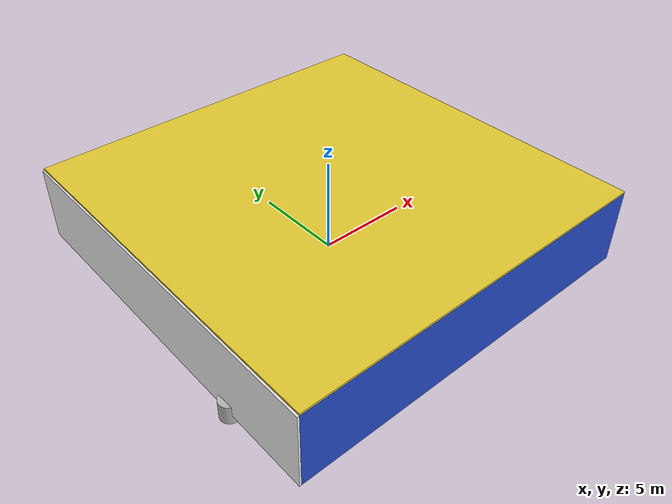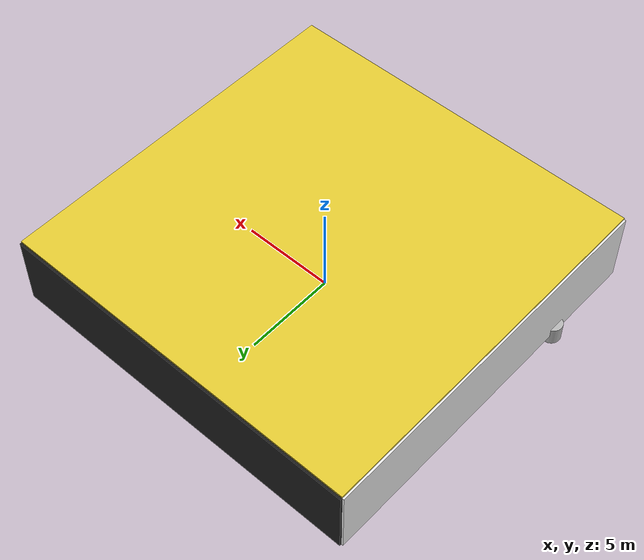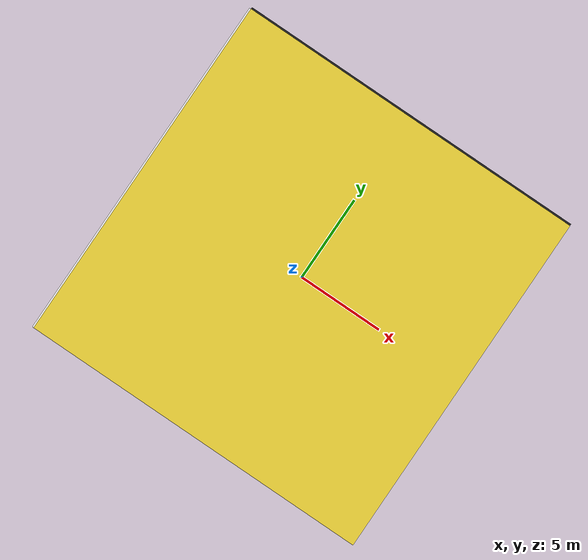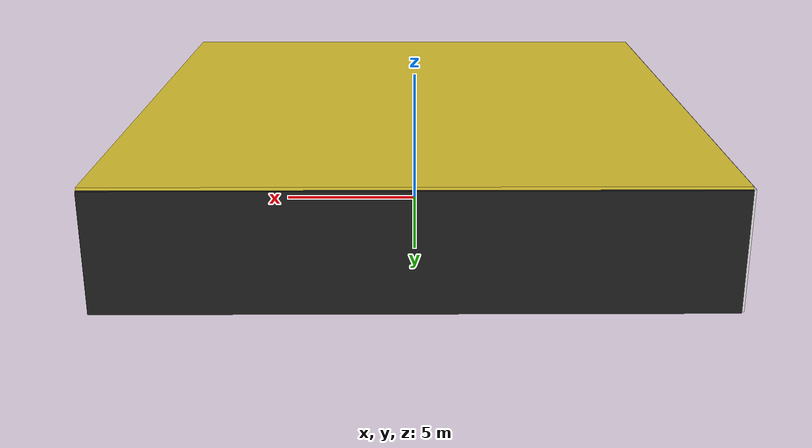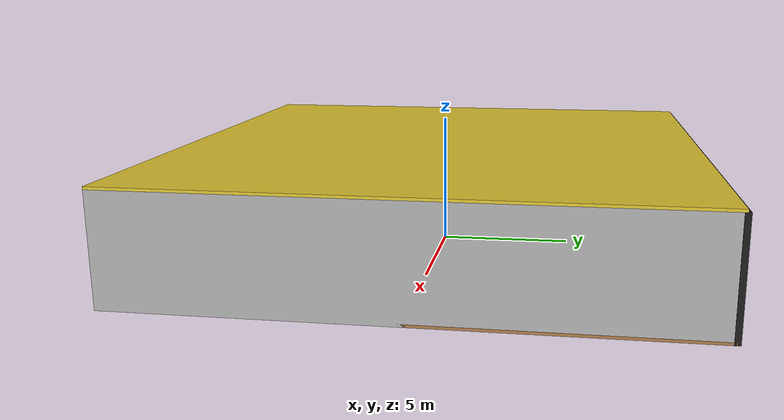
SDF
<sdf version="1.4">
 <world name="default">
  <physics type="ode">
   <max_step_size>0.001</max_step_size>
   <real_time_factor>1</real_time_factor>
   <real_time_update_rate>1000</real_time_update_rate>
   <gravity>0 0 -9.8</gravity>
  </physics>
  <scene><ambient>0.4 0.4 0.4 1</ambient><background>0.7 0.7 0.7 1</background><shadows>1</shadows></scene>
  <model name="Surrounding">
   <static>1</static>
   <link name="Ceiling">
    <collision name="Ceiling_Collision"><geometry><box><size>20 20 0.1</size></box></geometry></collision>
    <visual name="Ceiling_Visual">
     <geometry><box><size>20 20 0.1</size></box></geometry>
     <material>
      <script><uri>file://media/materials/scripts/gazebo.material</uri><name>Gazebo/ZincYellow</name></script>
     </material>
    </visual>
    <pose>0 0 4.05 0 0 0</pose>
   </link>
   <link name="Wall_South">
    <collision name="Wall_South_Collision">
     <geometry><box><size>20 0 4</size></box></geometry>
     <pose>0 0 2 0 -0 0</pose>
    </collision>
    <visual name="Wall_South_Visual">
     <pose>0 0 2 0 -0 0</pose>
     <geometry><box><size>20 0 4</size></box></geometry>
     <material>
      <script><uri>file://media/materials/scripts/gazebo.material</uri><name>Gazebo/Blue</name></script>
     </material>
    </visual>
    <velocity_decay><linear>0</linear><angular>0</angular></velocity_decay>
    <pose>0 -10 0 0 -0 0</pose>
   </link>
   <link name="Wall_East">
    <collision name="Wall_21_Collision">
     <geometry><box><size>20 0 4</size></box></geometry>
     <pose>0 0 2 0 -0 0</pose>
    </collision>
    <visual name="Wall_21_Visual">
     <pose>0 0 2 0 -0 0</pose>
     <geometry><box><size>20 0 4</size></box></geometry>
     <material>
      <script><uri>file://media/materials/scripts/gazebo.material</uri><name>Gazebo/CloudySky</name></script>
     </material>
    </visual>
    <velocity_decay><linear>0</linear><angular>0</angular></velocity_decay>
    <pose>10 0 0 0 -0 1.5708</pose>
   </link>
   <link name="Wall_North">
    <collision name="Wall_22_Collision">
     <geometry><box><size>20 0.2 4</size></box></geometry>
     <pose>0 0 2 0 -0 0</pose>
    </collision>
    <visual name="Wall_22_Visual">
     <pose>0 0 2 0 -0 0</pose>
     <geometry><box><size>20 0.2 4</size></box></geometry>
     <material>
      <script><uri>file://media/materials/scripts/gazebo.material</uri><name>Gazebo/FlatBlack</name></script>
     </material>
    </visual>
    <velocity_decay><linear>0</linear><angular>0</angular></velocity_decay>
    <pose>0 10 0 0 -0 0</pose>
   </link>
   <link name="Wall_West">
    <collision name="Wall_23_Collision">
     <geometry><box><size>20 0.2 4</size></box></geometry>
     <pose>0 0 2 0 -0 0</pose>
    </collision>
    <visual name="Wall_23_Visual">
     <pose>0 0 2 0 -0 0</pose>
     <geometry><box><size>20 0.2 4</size></box></geometry>
     <material>
      <script><uri>file://media/materials/scripts/gazebo.material</uri><name>Gazebo/White</name></script>
     </material>
    </visual>
    <velocity_decay><linear>0</linear><angular>0</angular></velocity_decay>
    <pose>-10 0 0 0 0 -1.5708</pose>
   </link>
   <link name="Ground_link">
    <collision name="collision">
     <pose>0 0 .05 0 -0 0</pose>
     <geometry><box><size>20 20 0.1</size></box></geometry>
    </collision>
    <visual name="visual">
     <pose>0 0 .05 0 -0 0</pose>
     <geometry><box><size>20 20 0.1</size></box></geometry>
     <material>
      <script><uri>file://media/materials/scripts/gazebo.material</uri><name>Gazebo/WoodPallet</name></script>
     </material>
    </visual>
   </link>
   <static>1</static>
  </model>
  <spherical_coordinates>
   <surface_model>EARTH_WGS84</surface_model>
   <latitude_deg>0</latitude_deg>
   <longitude_deg>0</longitude_deg>
   <elevation>0</elevation>
   <heading_deg>0</heading_deg>
  </spherical_coordinates>
  <light name="lightball_0" type="diffuse">
   <diffuse>0.8 0.8 0.8 1</diffuse>
   <specular>0.2 0.2 0.2 1</specular>
   <attenuation>
    <range>100</range>
    <constant>0.7</constant>
    <linear>0.01</linear>
    <quadratic>0.001</quadratic>
   </attenuation>
   <direction>-0.5 0.1 -0.9</direction>
   <pose>-0.103257895045 9.40067847142 3.2526845501 0 0 0</pose>
  </light>
  <light name="lightball_1" type="diffuse">
   <diffuse>0.8 0.8 0.8 1</diffuse>
   <specular>0.2 0.2 0.2 1</specular>
   <attenuation>
    <range>100</range>
    <constant>0.7</constant>
    <linear>0.01</linear>
    <quadratic>0.001</quadratic>
   </attenuation>
   <direction>-0.5 0.1 -0.9</direction>
   <pose>-5.09414641733 1.21996396358 3.14297688827 0 0 0</pose>
  </light>
  <light name="lightball_2" type="diffuse">
   <diffuse>0.8 0.8 0.8 1</diffuse>
   <specular>0.2 0.2 0.2 1</specular>
   <attenuation>
    <range>100</range>
    <constant>0.7</constant>
    <linear>0.01</linear>
    <quadratic>0.001</quadratic>
   </attenuation>
   <direction>-0.5 0.1 -0.9</direction>
   <pose>9.91248009124 9.0711772436 1.36961092723 0 0 0</pose>
  </light>
  <light name="lightball_3" type="diffuse">
   <diffuse>0.8 0.8 0.8 1</diffuse>
   <specular>0.2 0.2 0.2 1</specular>
   <attenuation>
    <range>100</range>
    <constant>0.7</constant>
    <linear>0.01</linear>
    <quadratic>0.001</quadratic>
   </attenuation>
   <direction>-0.5 0.1 -0.9</direction>
   <pose>-4.11134986466 3.5513981027 1.16891625148 0 0 0</pose>
  </light>
  <light name="lightball_4" type="diffuse">
   <diffuse>0.8 0.8 0.8 1</diffuse>
   <specular>0.2 0.2 0.2 1</specular>
   <attenuation>
    <range>100</range>
    <constant>0.7</constant>
    <linear>0.01</linear>
    <quadratic>0.001</quadratic>
   </attenuation>
   <direction>-0.5 0.1 -0.9</direction>
   <pose>4.81450222377 -6.82722284309 3.40185586623 0 0 0</pose>
  </light>
  <light name="lightball_5" type="diffuse">
   <diffuse>0.8 0.8 0.8 1</diffuse>
   <specular>0.2 0.2 0.2 1</specular>
   <attenuation>
    <range>100</range>
    <constant>0.7</constant>
    <linear>0.01</linear>
    <quadratic>0.001</quadratic>
   </attenuation>
   <direction>-0.5 0.1 -0.9</direction>
   <pose>8.83517893694 4.24538051194 1.74282254897 0 0 0</pose>
  </light>
  <light name="lightball_6" type="diffuse">
   <diffuse>0.8 0.8 0.8 1</diffuse>
   <specular>0.2 0.2 0.2 1</specular>
   <attenuation>
    <range>100</range>
    <constant>0.7</constant>
    <linear>0.01</linear>
    <quadratic>0.001</quadratic>
   </attenuation>
   <direction>-0.5 0.1 -0.9</direction>
   <pose>-8.87881744947 -9.00667049921 0.934129191109 0 0 0</pose>
  </light>
  <light name="lightball_7" type="diffuse">
   <diffuse>0.8 0.8 0.8 1</diffuse>
   <specular>0.2 0.2 0.2 1</specular>
   <attenuation>
    <range>100</range>
    <constant>0.7</constant>
    <linear>0.01</linear>
    <quadratic>0.001</quadratic>
   </attenuation>
   <direction>-0.5 0.1 -0.9</direction>
   <pose>2.35184559113 -2.07618834882 1.64962312161 0 0 0</pose>
  </light>
  <light name="lightball_8" type="diffuse">
   <diffuse>0.8 0.8 0.8 1</diffuse>
   <specular>0.2 0.2 0.2 1</specular>
   <attenuation>
    <range>100</range>
    <constant>0.7</constant>
    <linear>0.01</linear>
    <quadratic>0.001</quadratic>
   </attenuation>
   <direction>-0.5 0.1 -0.9</direction>
   <pose>-0.0158546892056 2.58951800372 3.10090970796 0 0 0</pose>
  </light>
  <light name="lightball_9" type="diffuse">
   <diffuse>0.8 0.8 0.8 1</diffuse>
   <specular>0.2 0.2 0.2 1</specular>
   <attenuation>
    <range>100</range>
    <constant>0.7</constant>
    <linear>0.01</linear>
    <quadratic>0.001</quadratic>
   </attenuation>
   <direction>-0.5 0.1 -0.9</direction>
   <pose>-0.197854299961 -5.16173879195 3.01506641063 0 0 0</pose>
  </light>
  <light name="lightball_10" type="diffuse">
   <diffuse>0.8 0.8 0.8 1</diffuse>
   <specular>0.2 0.2 0.2 1</specular>
   <attenuation>
    <range>100</range>
    <constant>0.7</constant>
    <linear>0.01</linear>
    <quadratic>0.001</quadratic>
   </attenuation>
   <direction>-0.5 0.1 -0.9</direction>
   <pose>-1.11780219228 -3.29797031152 1.95510889569 0 0 0</pose>
  </light>
  <light name="lightball_11" type="diffuse">
   <diffuse>0.8 0.8 0.8 1</diffuse>
   <specular>0.2 0.2 0.2 1</specular>
   <attenuation>
    <range>100</range>
    <constant>0.7</constant>
    <linear>0.01</linear>
    <quadratic>0.001</quadratic>
   </attenuation>
   <direction>-0.5 0.1 -0.9</direction>
   <pose>-6.89958890527 -2.48176094158 0.983664852937 0 0 0</pose>
  </light>
  <light name="lightball_12" type="diffuse">
   <diffuse>0.8 0.8 0.8 1</diffuse>
   <specular>0.2 0.2 0.2 1</specular>
   <attenuation>
    <range>100</range>
    <constant>0.7</constant>
    <linear>0.01</linear>
    <quadratic>0.001</quadratic>
   </attenuation>
   <direction>-0.5 0.1 -0.9</direction>
   <pose>-0.797886300754 4.61261109757 3.27270874288 0 0 0</pose>
  </light>
  <include>
   <uri>model://textured_shapes</uri>
   <pose>-8.53765923387 -4.61242765912 0 0 0 2.00426027029</pose>
  </include>
  <include><uri>model://cabinet</uri><pose>-2.32256147946 -4.63477777144 0 0 0 2.53180521347</pose></include>
  <include><uri>model://cabinet</uri><pose>-1.38648363094 -2.55759793669 0 0 0 0.730990275761</pose></include>
  <include><uri>model://cabinet</uri><pose>1.08759405812 4.23472340534 0 0 0 2.3512844336</pose></include>
  <include><uri>model://cabinet</uri><pose>5.14235590244 -4.31557062015 0 0 0 1.71924842852</pose></include>
 </world>
</sdf>

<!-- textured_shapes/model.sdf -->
<sdf version="1.6">
  <model name="textured_shapes">
    <pose>0 0 0.5 0 0 0</pose>
    <link name="box">
      <pose>0 -1.5 0 0 0 0</pose>
      <collision name="collision">
        <geometry>
          <box>
            <size>1 1 1</size>
          </box>
        </geometry>
      </collision>
      <visual name="visual">
        <geometry>
          <box>
            <size>1 1 1</size>
          </box>
        </geometry>
        <material>
          <script>
            <uri>model://../model_source/models/textured_shapes/materials/scripts</uri>
            <uri>model://../model_source/models/textured_shapes/materials/textures</uri>
            <name>TexturedShape/Squares</name>
          </script>
        </material>
      </visual>
    </link>
    <link name="sphere">
      <collision name="collision">
        <geometry>
          <sphere>
            <radius>0.5</radius>
          </sphere>
        </geometry>
      </collision>
      <visual name="visual">
        <geometry>
          <sphere>
            <radius>0.5</radius>
          </sphere>
        </geometry>
        <material>
          <script>
            <uri>model://../model_source/models/textured_shapes/materials/scripts</uri>
            <uri>model://../model_source/models/textured_shapes/materials/textures</uri>
            <name>TexturedShape/Squares</name>
          </script>
        </material>
      </visual>
    </link>
    <link name="cylinder">
      <pose>0 1.5 0 0 0 0</pose>
      <collision name="collision">
        <geometry>
          <cylinder>
            <radius>0.5</radius>
            <length>1</length>
          </cylinder>
        </geometry>
      </collision>
      <visual name="visual">
        <geometry>
          <cylinder>
            <radius>0.5</radius>
            <length>1</length>
          </cylinder>
        </geometry>
        <material>
          <script>
            <uri>model://../model_source/models/textured_shapes/materials/scripts</uri>
            <uri>model://../model_source/models/textured_shapes/materials/textures</uri>
            <name>TexturedShape/Squares</name>
          </script>
        </material>
      </visual>
    </link>
  </model>
</sdf>

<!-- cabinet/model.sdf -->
<sdf version="1.5">
  <model name="cabinet">
    <static>true</static>
    <link name="cabinet_bottom_plate">
      <inertial>
        <pose>0 0 -1 0 0 0</pose>
        <inertia>
          <ixx>2.050000</ixx>
          <ixy>0</ixy>
          <ixz>0</ixz>
          <iyy>2.050000</iyy>
          <iyz>0</iyz>
          <izz>2.050000</izz>
        </inertia>
        <mass>25.000000</mass>
      </inertial>
      <collision name="cabinet_bottom_plate_geom">
        <pose>0 0 0.010000 0 0 0</pose>
        <geometry>
          <box>
            <size>0.450000 0.450000 0.020000</size>
          </box>
        </geometry>
      </collision>
      <visual name="cabinet_bottom_plate_geom_visual">
        <pose>0 0 0.010000 0 0 0</pose>
        <geometry>
          <box>
            <size>0.450000 0.450000 0.020000</size>
          </box>
        </geometry>
        <material>
          <script>
            <uri>model://media/materials/scripts/gazebo.material</uri>
            <name>Gazebo/Wood</name>
          </script>
        </material>
      </visual>
      <collision name="cabinet_bottom_plate_geom_cabinet_back_plate">
        <pose>0.235000 0 0.510000 0 0 0</pose>
        <geometry>
          <box>
            <size>0.020000 0.450000 1.020000</size>
          </box>
        </geometry>
      </collision>
      <visual name="cabinet_bottom_plate_geom_cabinet_back_plate_visual">
        <pose>0.235000 0 0.510000 0 0 0</pose>
        <geometry>
          <box>
            <size>0.020000 0.450000 1.020000</size>
          </box>
        </geometry>
        <material>
          <script>
            <uri>model://media/materials/scripts/gazebo.material</uri>
            <name>Gazebo/Wood</name>
          </script>
        </material>
      </visual>
      <collision name="cabinet_bottom_plate_geom_cabinet_left_plate">
        <pose>0 0.235000 0.510000 0 0 0</pose>
        <geometry>
          <box>
            <size>0.450000 0.020000 1.020000</size>
          </box>
        </geometry>
      </collision>
      <visual name="cabinet_bottom_plate_geom_cabinet_left_plate_visual">
        <pose>0 0.235000 0.510000 0 0 0</pose>
        <geometry>
          <box>
            <size>0.450000 0.020000 1.020000</size>
          </box>
        </geometry>
        <material>
          <script>
            <uri>model://media/materials/scripts/gazebo.material</uri>
            <name>Gazebo/Wood</name>
          </script>
        </material>
      </visual>
      <collision name="cabinet_bottom_plate_geom_cabinet_middle_plate">
        <pose>0 0 0.510000 0 0 0</pose>
        <geometry>
          <box>
            <size>0.450000 0.450000 0.020000</size>
          </box>
        </geometry>
      </collision>
      <visual name="cabinet_bottom_plate_geom_cabinet_middle_plate_visual">
        <pose>0 0 0.510000 0 0 0</pose>
        <geometry>
          <box>
            <size>0.450000 0.450000 0.020000</size>
          </box>
        </geometry>
        <material>
          <script>
            <uri>model://media/materials/scripts/gazebo.material</uri>
            <name>Gazebo/Wood</name>
          </script>
        </material>
      </visual>
      <collision name="cabinet_bottom_plate_geom_cabinet_right_plate">
        <pose>0 -0.235000 0.510000 0 0 0</pose>
        <geometry>
          <box>
            <size>0.450000 0.020000 1.020000</size>
          </box>
        </geometry>
      </collision>
      <visual name="cabinet_bottom_plate_geom_cabinet_right_plate_visual">
        <pose>0 -0.235000 0.510000 0 0 0</pose>
        <geometry>
          <box>
            <size>0.450000 0.020000 1.020000</size>
          </box>
        </geometry>
        <material>
          <script>
            <uri>model://media/materials/scripts/gazebo.material</uri>
            <name>Gazebo/Wood</name>
          </script>
        </material>
      </visual>
      <collision name="cabinet_bottom_plate_geom_cabinet_top_plate">
        <pose>0 0 1.010000 0 0 0</pose>
        <geometry>
          <box>
            <size>0.450000 0.450000 0.020000</size>
          </box>
        </geometry>
      </collision>
      <visual name="cabinet_bottom_plate_geom_cabinet_top_plate_visual">
        <pose>0 0 1.010000 0 0 0</pose>
        <geometry>
          <box>
            <size>0.450000 0.450000 0.020000</size>
          </box>
        </geometry>
        <material>
          <script>
            <uri>model://media/materials/scripts/gazebo.material</uri>
            <name>Gazebo/Wood</name>
          </script>
        </material>
      </visual>
    </link>
  </model>
</sdf>
